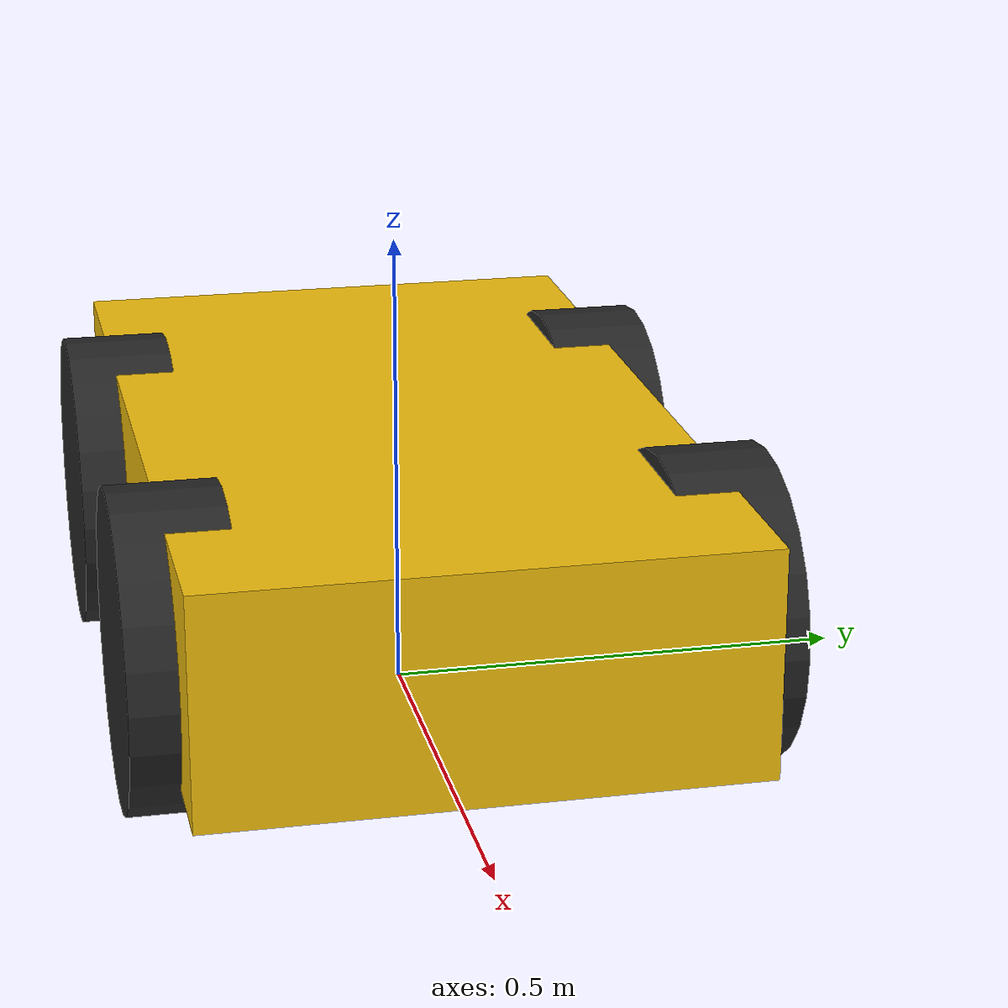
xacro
<?xml version="1.0"?>
<robot xmlns:xacro="http://www.ros.org/wiki/xacro" name="husky">

  <xacro:arg name="harness_url" default="http://127.0.0.1:6789"/>
  <xacro:arg name="bridge_url" default="http://127.0.0.1:8765"/>
  <xacro:arg name="robot_def" default="HUSKY"/>
  <xacro:arg name="comms_rate_hz" default="25.0"/>

  <xacro:property name="wheel_radius" value="0.1651"/>
  <xacro:property name="wheel_length" value="0.1143"/>
  <xacro:property name="wheel_x" value="0.256"/>
  <xacro:property name="wheel_y" value="0.2775"/>
  <xacro:property name="wheel_z" value="0.03282"/>

  <material name="husky_yellow"><color rgba="0.95 0.75 0.05 1.0"/></material>
  <material name="husky_dark"><color rgba="0.15 0.15 0.15 1.0"/></material>

  <link name="base_footprint"/>

  <link name="base_link">
    <visual>
      <origin xyz="0 0 0.06"/>
      <geometry><box size="0.98 0.57 0.24"/></geometry>
      <material name="husky_yellow"/>
    </visual>
  </link>

  <joint name="base_footprint_joint" type="fixed">
    <origin xyz="0 0 0.13228"/>
    <parent link="base_footprint"/>
    <child link="base_link"/>
  </joint>

  <xacro:macro name="husky_wheel" params="name x y">
    <link name="${name}_link">
      <visual>
        <origin rpy="1.570796 0 0" xyz="0 0 0"/>
        <geometry><cylinder length="${wheel_length}" radius="${wheel_radius}"/></geometry>
        <material name="husky_dark"/>
      </visual>
    </link>
    <joint name="${name}" type="continuous">
      <parent link="base_link"/>
      <child link="${name}_link"/>
      <origin xyz="${x} ${y} ${wheel_z}"/>
      <axis xyz="0 1 0"/>
    </joint>
  </xacro:macro>

  <xacro:husky_wheel name="front_left_wheel" x="${wheel_x}" y="${wheel_y}"/>
  <xacro:husky_wheel name="front_right_wheel" x="${wheel_x}" y="${-wheel_y}"/>
  <xacro:husky_wheel name="rear_left_wheel" x="${-wheel_x}" y="${wheel_y}"/>
  <xacro:husky_wheel name="rear_right_wheel" x="${-wheel_x}" y="${-wheel_y}"/>

  <ros2_control name="OmniSimHusky" type="system">
    <hardware>
      <plugin>omnisim_ros2_control/OmniSimSystem</plugin>
      <param name="harness_url">$(arg harness_url)</param>
      <param name="robot_def">$(arg robot_def)</param>
      <param name="bridge_url">$(arg bridge_url)</param>
      <param name="command_mode">diff_drive</param>
      <param name="wheel_radius">${wheel_radius}</param>
      <param name="wheel_separation">0.5708</param>
      <param name="comms_rate_hz">$(arg comms_rate_hz)</param>
      <!-- The bridge expires an open-ended velocity command after 12 SIMULATED
           seconds, and the harness runs at ~13x realtime, so that is under one
           wall second. Refresh well inside it. -->
      <param name="command_refresh_s">0.25</param>
      <param name="diagnostics_period_s">10.0</param>
    </hardware>

    <joint name="front_left_wheel">
      <param name="omnisim_joint">front_left_wheel_motor</param>
      <param name="omnisim_side">left</param>
      <command_interface name="velocity"/>
      <state_interface name="position"/>
      <state_interface name="velocity"/>
    </joint>
    <joint name="front_right_wheel">
      <param name="omnisim_joint">front_right_wheel_motor</param>
      <param name="omnisim_side">right</param>
      <command_interface name="velocity"/>
      <state_interface name="position"/>
      <state_interface name="velocity"/>
    </joint>
    <joint name="rear_left_wheel">
      <param name="omnisim_joint">rear_left_wheel_motor</param>
      <param name="omnisim_side">left</param>
      <command_interface name="velocity"/>
      <state_interface name="position"/>
      <state_interface name="velocity"/>
    </joint>
    <joint name="rear_right_wheel">
      <param name="omnisim_joint">rear_right_wheel_motor</param>
      <param name="omnisim_side">right</param>
      <command_interface name="velocity"/>
      <state_interface name="position"/>
      <state_interface name="velocity"/>
    </joint>
  </ros2_control>
</robot>
